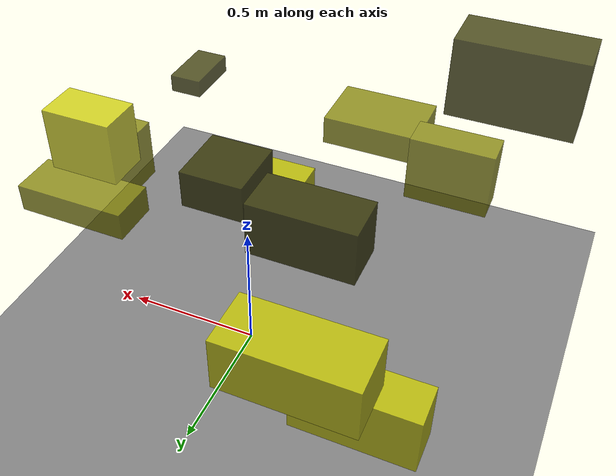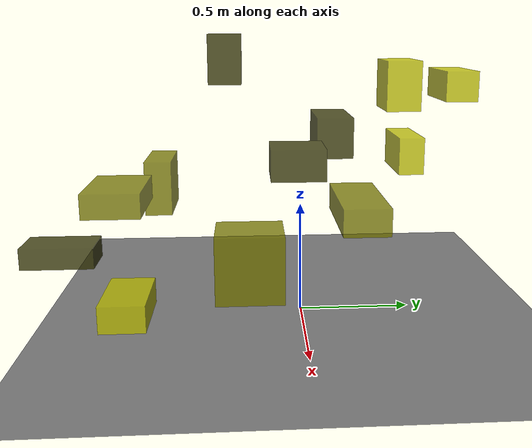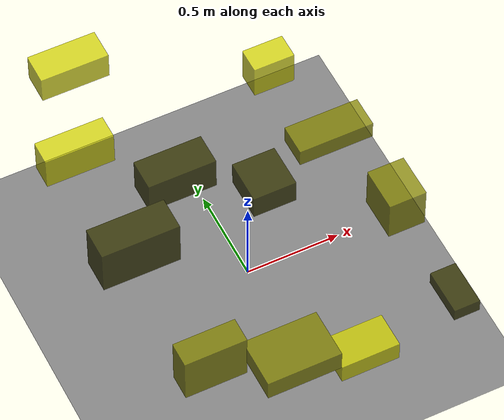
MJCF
<?xml version="1.0"?>
<mujoco model="obstacle_scene">
  <compiler angle="radian" coordinate="local"/>
  <option timestep="0.001" gravity="0 0 -9.81"/>

  <asset>
    <material name="obstacle_mat" rgba="0.8 0.8 0.0 0.8"/>
    <material name="ground_mat" rgba="0.5 0.5 0.5 1"/>
  </asset>

  <worldbody>
    <!-- Ground plane -->
    <geom name="ground" type="plane" size="3 3 0.1" material="ground_mat"/>

    <!-- Obstacles -->
    <body name="obstacle_0" pos="0.663438 -0.878252 0.522214">
      <geom name="obs_0" type="box" size="0.067750 0.122793 0.037144" rgba="0.2 0.2 0.0 0.8"/>
    </body>
    <body name="obstacle_1" pos="-0.536870 -0.684397 0.487693">
      <geom name="obs_1" type="box" size="0.161868 0.066298 0.135612" rgba="0.5 0.5 0.0 0.8"/>
    </body>
    <body name="obstacle_2" pos="0.290578 0.361545 1.060995">
      <geom name="obs_2" type="box" size="0.105314 0.065519 0.095577" rgba="0.8 0.8 0.0 0.8"/>
    </body>
    <body name="obstacle_3" pos="-0.756421 -0.348281 1.116444">
      <geom name="obs_3" type="box" size="0.196032 0.085441 0.127975" rgba="0.2 0.2 0.0 0.8"/>
    </body>
    <body name="obstacle_4" pos="-0.186784 -0.846657 0.502147">
      <geom name="obs_4" type="box" size="0.193127 0.133208 0.058304" rgba="0.5 0.5 0.0 0.8"/>
    </body>
    <body name="obstacle_5" pos="-0.545506 0.838246 0.989701">
      <geom name="obs_5" type="box" size="0.176588 0.080488 0.075839" rgba="0.8 0.8 0.0 0.8"/>
    </body>
    <body name="obstacle_6" pos="-0.300916 0.171623 0.775956">
      <geom name="obs_6" type="box" size="0.177382 0.083892 0.094592" rgba="0.2 0.2 0.0 0.8"/>
    </body>
    <body name="obstacle_7" pos="0.527715 0.173262 0.625128">
      <geom name="obs_7" type="box" size="0.198217 0.084289 0.050015" rgba="0.5 0.5 0.0 0.8"/>
    </body>
    <body name="obstacle_8" pos="0.244982 -0.743604 0.143836">
      <geom name="obs_8" type="box" size="0.155495 0.095339 0.057765" rgba="0.8 0.8 0.0 0.8"/>
    </body>
    <body name="obstacle_9" pos="0.077797 -0.021984 0.714658">
      <geom name="obs_9" type="box" size="0.112420 0.116950 0.068509" rgba="0.2 0.2 0.0 0.8"/>
    </body>
    <body name="obstacle_10" pos="0.690292 -0.232044 0.481711">
      <geom name="obs_10" type="box" size="0.098480 0.118247 0.119369" rgba="0.5 0.5 0.0 0.8"/>
    </body>
    <body name="obstacle_11" pos="-0.630967 0.615412 0.622270">
      <geom name="obs_11" type="box" size="0.181202 0.064569 0.096067" rgba="0.8 0.8 0.0 0.8"/>
    </body>
  </worldbody>
</mujoco>
